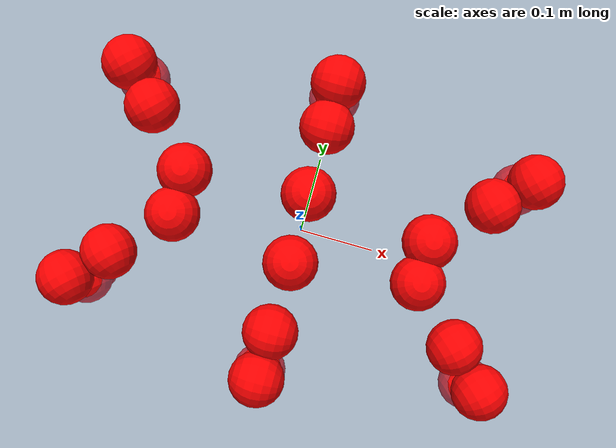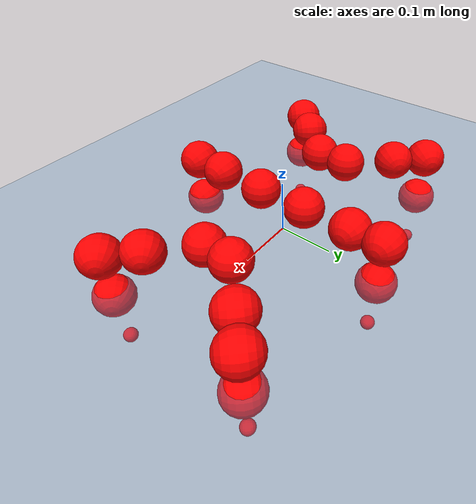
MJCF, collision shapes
<mujoco model="Golem">
  <compiler angle="radian" assetdir="assets" balanceinertia="true" inertiafromgeom="false"/>

  <option timestep="0.005" density="1.2" viscosity="2e-05"/>

  <size nkey="1"/>

  <visual>
    <quality shadowsize="8192"/>
    <map shadowclip="0.5"/>
  </visual>

  <default>
    <default class="/">
      <joint armature="0.01" damping="0.01" frictionloss="0.01"/>
      <geom contype="0" conaffinity="0" group="1" solref="-1000 -80"/>
      <site size="0.01 0.005 0.005" group="5"/>
      <general forcelimited="true" biastype="affine" gainprm="25" biasprm="0 -25 -0.5"/>
      <default class="visual">
        <geom type="mesh" group="2"/>
      </default>
      <default class="collision">
        <geom group="3"/>
      </default>
      <default class="foot">
        <geom size="0.01 0 0" condim="6" group="4" priority="1" solimp="0.015 1 0.01"/>
      </default>
      <default class="reward_collision_sphere">
        <geom group="5" rgba="1 0 0 1"/>
      </default>
    </default>
  </default>

  <asset>
    <texture type="skybox" colorspace="auto" name="//unnamed_texture_0" builtin="gradient" rgb1="0.95 0.95 0.95" rgb2="0.95 0.95 0.95" width="100" height="600"/>
    <texture type="2d" colorspace="auto" name="texplane" builtin="checker" rgb1="0.345 0.575 0.748" rgb2="0.345 0.575 0.748" markrgb="1 1 1" width="512" height="512"/>
    <material name="MatPlane" class="/" texture="texplane" texuniform="true" texrepeat="2 2" specular="0.9"/>
    <mesh name="body" class="/" file="body.stl" scale="0.001 0.001 0.001"/>
    <mesh name="coxa" class="/" file="coxa.stl" scale="0.001 0.001 0.001"/>
    <mesh name="femur" class="/" file="femur.stl" scale="0.001 0.001 0.001"/>
    <mesh name="tibia" class="/" file="tibia.stl" scale="0.001 0.001 0.001"/>
    <mesh name="tarsus" class="/" file="tarsus.stl" scale="0.001 0.001 0.001"/>
  </asset>

  <worldbody>
    <geom name="floor" class="/" size="100 100 0.125" type="plane" group="0" material="MatPlane"/>
    <light name="toplight_shadow" class="/" pos="0 0 5" dir="0.0990148 0.0990148 -0.990148" type="directional" ambient="0.04 0.04 0.04" diffuse="0.55 0.55 0.55" specular="0.12 0.12 0.12"/>
    <light name="toplight_fill" class="/" pos="0 0 5" dir="0.0990148 0.0990148 -0.990148" type="directional" castshadow="false" ambient="0.04 0.04 0.04" diffuse="0.3 0.3 0.3" specular="0.08 0.08 0.08"/>
    <body name="trunk" pos="4.31195e-05 -0.000412428 0.000883804" quat="1 -0.000169561 0.000131354 0.000120974">
      <inertial pos="-0.000122165 1.15131e-05 -0.00352879" quat="1 2.01015e-06 0.00018404 -2.63822e-05" mass="2.66245" diaginertia="0.0121105 0.000672519 0.0134984"/>
      <joint name="//unnamed_joint_0" type="free"/>
      <geom name="//unnamed_geom_1" class="/" pos="0 0 0.0679556" quat="1 0 0 0" type="mesh" rgba="0.9 0.9 0.9 1" mesh="body"/>
      <site name="imu" class="/" pos="0.133198 -0.00187472 0.109638" size="0.00893643"/>
      <camera name="track" class="/" pos="0 -1.16144 0" quat="0.707107 0.707107 0 0" mode="trackcom"/>
      <camera name="ego_camera" class="/" pos="0.134992 0 0.106181" quat="-0.5 -0.5 0.5 0.5"/>
      <body name="coxa_RR" pos="-0.183352 -0.0496281 0.0695098" quat="0.38297 0.000182027 0.000201022 -0.923761">
        <inertial pos="-0.000632446 2.752e-05 0.00183221" quat="0.999997 -0.00147924 -0.000578372 -0.0021039" mass="0.141781" diaginertia="0.0119877 0.000657814 0.0136087"/>
        <joint name="coxa_joint_RR" class="/" pos="0 0 0" axis="-0.000648367 -0.00132377 -0.999999" range="-3.1477 3.13608" armature="0.00911497" damping="0.00784886" frictionloss="0.0088352"/>
        <geom name="//unnamed_geom_2" class="/" type="mesh" rgba="0.2 0.2 0.2 1" mesh="coxa"/>
        <geom name="//unnamed_geom_3" class="reward_collision_sphere" size="0.0357457" pos="-0.0311521 0 0"/>
        <body name="femur_RR" pos="0.0626119 0.00209396 -0.00136127" quat="0.500059 -0.500239 0.499798 0.499903">
          <inertial pos="0.000185207 0.0003568 -0.000826014" quat="0.99999 -0.00146271 -0.00393003 -0.00156181" mass="0.142461" diaginertia="0.0119576 0.000666877 0.0135138"/>
          <joint name="femur_joint_RR" class="/" pos="0 0 0" axis="0.000260363 0.00076309 -1" range="-3.13803 3.13773" armature="0.00875755" damping="0.000686349" frictionloss="0.00895942"/>
          <geom name="//unnamed_geom_4" class="/" type="mesh" rgba="0.9 0.9 0.9 1" mesh="femur"/>
          <geom name="//unnamed_geom_5" class="reward_collision_sphere" size="0.0357457"/>
          <body name="tibia_RR" pos="0.000926731 -0.06362 0.0017721" quat="-8.26273e-06 1 5.23487e-06 -8.6685e-06">
            <inertial pos="-0.000205106 0.000458088 0.0003406" quat="1 5.02472e-05 -3.73089e-05 4.76165e-05" mass="0.144315" diaginertia="0.0122314 0.000665527 0.0136622"/>
            <joint name="tibia_joint_RR" class="/" pos="0 0 0" axis="-0.00063287 0.00132689 0.999999" range="-3.13421 3.14736" armature="0.00935847" damping="0" frictionloss="0.00934797"/>
            <geom name="//unnamed_geom_6" class="/" type="mesh" rgba="0.2 0.2 0.2 1" mesh="tibia"/>
            <geom name="//unnamed_geom_7" class="reward_collision_sphere" size="0.0357457"/>
            <body name="tarsus_RR" pos="0.0907408 -0.000825618 -0.00143614" quat="1 -0.000211985 -0.000257946 -0.00012171">
              <inertial pos="0.061088 0.000182799 -0.000913921" quat="0.499517 0.503076 0.499319 0.498074" mass="0.142838" diaginertia="0.0121522 0.000658905 0.0136633"/>
              <joint name="tarsus_joint_RR" class="/" pos="0 0 0" axis="-0.000580972 -0.002836 0.999996" range="-3.1217 3.14174" armature="0.00886176" damping="0.00394153" frictionloss="0.00901421"/>
              <geom name="//unnamed_geom_8" class="/" type="mesh" rgba="0.9 0.9 0.9 1" mesh="tarsus"/>
              <geom name="foot_1" class="foot" size="0.00892154" pos="0.116301 0 0" quat="0 -0.707107 0 0.707107"/>
              <geom name="//unnamed_geom_10" class="reward_collision_sphere" size="0.0357457"/>
              <geom name="//unnamed_geom_11" class="reward_collision_sphere" size="0.0134047" pos="0.111628 0 0"/>
              <site name="foot_1" class="foot" pos="0.116301 0 0" quat="0 -0.707107 0 0.707107" size="0.00893643"/>
            </body>
          </body>
        </body>
      </body>
      <body name="coxa_RM" pos="-6.2863e-05 -0.0778672 0.0687166" quat="0.707134 0.000306155 -0.000167784 -0.707079">
        <inertial pos="0.00019471 0.00019215 0.000631295" quat="0.999994 0.000665819 0.000221318 -0.00329426" mass="0.145393" diaginertia="0.0121361 0.000669028 0.0135104"/>
        <joint name="coxa_joint_RM" class="/" pos="0 0 0" axis="-0.00227905 -0.00102198 -0.999997" range="-3.13705 3.15486" armature="0.00879317" damping="0.00986115" frictionloss="0.00854649"/>
        <geom name="//unnamed_geom_12" class="/" type="mesh" rgba="0.2 0.2 0.2 1" mesh="coxa"/>
        <geom name="//unnamed_geom_13" class="reward_collision_sphere" size="0.0357457" pos="-0.0311521 0 0"/>
        <body name="femur_RM" pos="0.059478 -0.000694012 0.00115802" quat="0.500097 -0.499969 0.499959 0.499974">
          <inertial pos="0.000167823 -0.00104943 0.000229076" quat="0.999998 -0.000330195 -0.00178283 0.000863421" mass="0.140975" diaginertia="0.0120939 0.000659698 0.013597"/>
          <joint name="femur_joint_RM" class="/" pos="0 0 0" axis="0.00100136 0.00031234 -0.999999" range="-3.14892 3.12376" armature="0.00855864" damping="0.00511943" frictionloss="0.00890493"/>
          <geom name="//unnamed_geom_14" class="/" type="mesh" rgba="0.9 0.9 0.9 1" mesh="femur"/>
          <geom name="//unnamed_geom_15" class="reward_collision_sphere" size="0.0357457"/>
          <body name="tibia_RM" pos="-0.000505819 -0.0612926 -0.000635375" quat="0.000141027 1 6.02084e-05 -2.87732e-06">
            <inertial pos="-0.000242688 -0.000902368 -0.000554332" quat="0.999997 -0.000653648 -0.00226443 0.000715314" mass="0.143119" diaginertia="0.0120946 0.000660363 0.0136308"/>
            <joint name="tibia_joint_RM" class="/" pos="0 0 0" axis="-0.000420781 0.000476697 1" range="-3.14794 3.12185" armature="0.00879349" damping="0.00411998" frictionloss="0.00902301"/>
            <geom name="//unnamed_geom_16" class="/" type="mesh" rgba="0.2 0.2 0.2 1" mesh="tibia"/>
            <geom name="//unnamed_geom_17" class="reward_collision_sphere" size="0.0357457"/>
            <body name="tarsus_RM" pos="0.0889127 -0.000567123 0.00124242" quat="1 5.95354e-05 0.000368548 0.00018003">
              <inertial pos="0.0626208 0.000593087 0.000451809" quat="0.49985 0.500522 0.49979 0.499837" mass="0.141846" diaginertia="0.0121432 0.000662052 0.0135413"/>
              <joint name="tarsus_joint_RM" class="/" pos="0 0 0" axis="-0.000409096 0.000525168 1" range="-3.14358 3.1284" armature="0.00921673" damping="0.00259026" frictionloss="0.00914347"/>
              <geom name="//unnamed_geom_18" class="/" type="mesh" rgba="0.9 0.9 0.9 1" mesh="tarsus"/>
              <geom name="foot_2" class="foot" size="0.00933176" pos="0.116301 0 0" quat="0 -0.707107 0 0.707107"/>
              <geom name="//unnamed_geom_20" class="reward_collision_sphere" size="0.0357457"/>
              <geom name="//unnamed_geom_21" class="reward_collision_sphere" size="0.0134047" pos="0.111628 0 0"/>
              <site name="foot_2" class="foot" pos="0.116301 0 0" quat="0 -0.707107 0 0.707107" size="0.00893643"/>
            </body>
          </body>
        </body>
      </body>
      <body name="coxa_RF" pos="0.184297 -0.0493028 0.0676151" quat="0.923831 7.86075e-05 -2.78405e-05 -0.382799">
        <inertial pos="-0.000134916 -0.0005648 0.00073536" quat="0.99999 0.000497128 -0.0042596 0.00133203" mass="0.143522" diaginertia="0.0122336 0.000670275 0.0136134"/>
        <joint name="coxa_joint_RF" class="/" pos="0 0 0" axis="-0.000614166 -0.00125921 -0.999999" range="-3.14295 3.15615" armature="0.00875068" damping="0.00812508" frictionloss="0.00893321"/>
        <geom name="//unnamed_geom_22" class="/" type="mesh" rgba="0.2 0.2 0.2 1" mesh="coxa"/>
        <geom name="//unnamed_geom_23" class="reward_collision_sphere" size="0.0357457" pos="-0.0311521 0 0"/>
        <body name="femur_RF" pos="0.061735 0.000382899 -0.00122591" quat="0.499914 -0.500154 0.499915 0.500018">
          <inertial pos="0.000360501 -6.47878e-05 -0.00031539" quat="0.999991 -0.00113316 0.00294947 0.00284315" mass="0.143059" diaginertia="0.0122292 0.000666972 0.0136527"/>
          <joint name="femur_joint_RF" class="/" pos="0 0 0" axis="-0.00106364 -0.000697344 -0.999999" range="-3.15161 3.13509" armature="0.00888598" damping="0.00449057" frictionloss="0.00898406"/>
          <geom name="//unnamed_geom_24" class="/" type="mesh" rgba="0.9 0.9 0.9 1" mesh="femur"/>
          <geom name="//unnamed_geom_25" class="reward_collision_sphere" size="0.0357457"/>
          <body name="tibia_RF" pos="0.000648907 -0.0640984 -0.000525123" quat="-3.51278e-05 1 8.46072e-05 0.000275916">
            <inertial pos="0.000269061 0.000141929 0.000417786" quat="1 0.000319653 -0.000103218 3.717e-05" mass="0.140213" diaginertia="0.0119663 0.000649216 0.0134397"/>
            <joint name="tibia_joint_RF" class="/" pos="0 0 0" axis="-0.000582597 0.00101551 0.999999" range="-3.12414 3.13338" armature="0.00880834" damping="0" frictionloss="0.00933838"/>
            <geom name="//unnamed_geom_26" class="/" type="mesh" rgba="0.2 0.2 0.2 1" mesh="tibia"/>
            <geom name="//unnamed_geom_27" class="reward_collision_sphere" size="0.0357457"/>
            <body name="tarsus_RF" pos="0.0905888 0.000624604 7.1247e-05" quat="1 1.44838e-05 -3.21584e-06 7.73564e-06">
              <inertial pos="0.0621251 0.000610281 2.38502e-05" quat="0.499538 0.49968 0.500304 0.500477" mass="0.143385" diaginertia="0.0122746 0.000669221 0.0136692"/>
              <joint name="tarsus_joint_RF" class="/" pos="0 0 0" axis="0.000791404 -0.0065062 0.999979" range="-3.14496 3.12759" armature="0.00878165" damping="0" frictionloss="0.00854469"/>
              <geom name="//unnamed_geom_28" class="/" type="mesh" rgba="0.9 0.9 0.9 1" mesh="tarsus"/>
              <geom name="foot_3" class="foot" size="0.00881465" pos="0.116301 0 0" quat="0 -0.707107 0 0.707107"/>
              <geom name="//unnamed_geom_30" class="reward_collision_sphere" size="0.0357457"/>
              <geom name="//unnamed_geom_31" class="reward_collision_sphere" size="0.0134047" pos="0.111628 0 0"/>
              <site name="foot_3" class="foot" pos="0.116301 0 0" quat="0 -0.707107 0 0.707107" size="0.00893643"/>
            </body>
          </body>
        </body>
      </body>
      <body name="coxa_LR" pos="-0.184124 0.052077 0.0683095" quat="0.382695 6.07534e-06 4.74679e-05 0.923875">
        <inertial pos="0.00103409 -0.00069352 0.000857502" quat="0.999997 -0.00208545 6.0908e-05 -0.00133718" mass="0.144144" diaginertia="0.012132 0.000671504 0.0135657"/>
        <joint name="coxa_joint_LR" class="/" pos="0 0 0" axis="-2.05621e-05 0.000149651 -1" range="-3.1263 3.13919" armature="0.0089471" damping="0.00590443" frictionloss="0.00859257"/>
        <geom name="//unnamed_geom_32" class="/" type="mesh" rgba="0.2 0.2 0.2 1" mesh="coxa"/>
        <geom name="//unnamed_geom_33" class="reward_collision_sphere" size="0.0357457" pos="-0.0311521 0 0"/>
        <body name="femur_LR" pos="0.0632171 -0.00348401 -0.001522" quat="0.49997 -0.500078 0.499965 0.499987">
          <inertial pos="-0.000150439 -0.00101064 -0.000275624" quat="0.999998 0.000241392 -0.000722063 0.00159601" mass="0.143099" diaginertia="0.0119062 0.000655863 0.0135702"/>
          <joint name="femur_joint_LR" class="/" pos="0 0 0" axis="-0.00489158 0.00434722 0.999979" range="-3.12511 3.1327" armature="0.00931096" damping="0.00525944" frictionloss="0.00896643"/>
          <geom name="//unnamed_geom_34" class="/" type="mesh" rgba="0.9 0.9 0.9 1" mesh="femur"/>
          <geom name="//unnamed_geom_35" class="reward_collision_sphere" size="0.0357457"/>
          <body name="tibia_LR" pos="0.000440489 -0.063832 -0.00151052" quat="3.53689e-07 1 -2.14394e-07 8.36527e-06">
            <inertial pos="0.000634933 0.000298725 -0.000413956" quat="0.999992 -0.00280226 -0.000601652 0.00293827" mass="0.143486" diaginertia="0.012219 0.000658976 0.0136517"/>
            <joint name="tibia_joint_LR" class="/" pos="0 0 0" axis="0.00119976 -0.00292029 -0.999995" range="-3.13214 3.12414" armature="0.009186" damping="0.00525075" frictionloss="0.00892262"/>
            <geom name="//unnamed_geom_36" class="/" type="mesh" rgba="0.2 0.2 0.2 1" mesh="tibia"/>
            <geom name="//unnamed_geom_37" class="reward_collision_sphere" size="0.0357457"/>
            <body name="tarsus_LR" pos="0.0915662 0.000647287 0.00148915" quat="1 2.39148e-06 3.94735e-06 -4.1373e-05">
              <inertial pos="0.0629385 0.000700603 0.000631641" quat="0.50025 0.499914 0.499738 0.500098" mass="0.142619" diaginertia="0.0120715 0.000668113 0.0133611"/>
              <joint name="tarsus_joint_LR" class="/" pos="0 0 0" axis="0.000193492 8.5291e-05 -1" range="-3.14687 3.11998" armature="0.00891665" damping="0" frictionloss="0.00933743"/>
              <geom name="//unnamed_geom_38" class="/" type="mesh" rgba="0.9 0.9 0.9 1" mesh="tarsus"/>
              <geom name="foot_4" class="foot" size="0.00852292" pos="0.116301 0 0" quat="0.707107 0 -0.707107 0"/>
              <geom name="//unnamed_geom_40" class="reward_collision_sphere" size="0.0357457"/>
              <geom name="//unnamed_geom_41" class="reward_collision_sphere" size="0.0134047" pos="0.111628 0 0"/>
              <site name="foot_4" class="foot" pos="0.116301 0 0" quat="0.707107 0 -0.707107 0" size="0.00893643"/>
            </body>
          </body>
        </body>
      </body>
      <body name="coxa_LM" pos="-0.00179755 0.0751352 0.0682947" quat="0.70711 2.93383e-05 -1.53317e-07 0.707103">
        <inertial pos="0.000129754 9.14357e-05 0.000553677" quat="0.999997 -0.00219686 0.000861613 0.000238148" mass="0.143931" diaginertia="0.0120163 0.000661096 0.0135682"/>
        <joint name="coxa_joint_LM" class="/" pos="0 0 0" axis="0.00525043 0.00213771 -0.999984" range="-3.14784 3.14255" armature="0.008924" damping="0.00703847" frictionloss="0.00890732"/>
        <geom name="//unnamed_geom_42" class="/" type="mesh" rgba="0.2 0.2 0.2 1" mesh="coxa"/>
        <geom name="//unnamed_geom_43" class="reward_collision_sphere" size="0.0357457" pos="-0.0311521 0 0"/>
        <body name="femur_LM" pos="0.0583759 0.000623522 -0.00119783" quat="0.499881 -0.499947 0.49995 0.500223">
          <inertial pos="0.000629469 4.38565e-05 -0.000806791" quat="0.999994 0.00185984 0.00271182 0.00112491" mass="0.144707" diaginertia="0.0121655 0.000667376 0.0135804"/>
          <joint name="femur_joint_LM" class="/" pos="0 0 0" axis="-0.00230536 0.00675504 0.999975" range="-3.13141 3.12654" armature="0.00931313" damping="0.00416023" frictionloss="0.00909978"/>
          <geom name="//unnamed_geom_44" class="/" type="mesh" rgba="0.9 0.9 0.9 1" mesh="femur"/>
          <geom name="//unnamed_geom_45" class="reward_collision_sphere" size="0.0357457"/>
          <body name="tibia_LM" pos="-0.000324628 -0.0593539 0.00153772" quat="-9.00595e-05 1 -0.000404919 -5.63077e-05">
            <inertial pos="-0.000743807 -0.00144202 -0.000117008" quat="0.999998 0.000279582 -0.000486565 0.00208943" mass="0.139536" diaginertia="0.0119429 0.000653098 0.0133591"/>
            <joint name="tibia_joint_LM" class="/" pos="0 0 0" axis="-0.00077358 0.000444464 -1" range="-3.14884 3.15565" armature="0.00942626" damping="0" frictionloss="0.00871554"/>
            <geom name="//unnamed_geom_46" class="/" type="mesh" rgba="0.2 0.2 0.2 1" mesh="tibia"/>
            <geom name="//unnamed_geom_47" class="reward_collision_sphere" size="0.0357457"/>
            <body name="tarsus_LM" pos="0.0913355 -0.000519916 -0.00112945" quat="1 -2.85311e-05 4.10568e-05 8.53523e-06">
              <inertial pos="0.0638149 -2.2962e-05 1.67897e-06" quat="0.500765 0.501737 0.500894 0.496588" mass="0.14096" diaginertia="0.0118854 0.000644586 0.0133708"/>
              <joint name="tarsus_joint_LM" class="/" pos="0 0 0" axis="-0.00073566 -0.00116338 -0.999999" range="-3.1377 3.13662" armature="0.00875264" damping="0.00340997" frictionloss="0.00920654"/>
              <geom name="//unnamed_geom_48" class="/" type="mesh" rgba="0.9 0.9 0.9 1" mesh="tarsus"/>
              <geom name="foot_5" class="foot" size="0.00871744" pos="0.116301 0 0" quat="0.707107 0 -0.707107 0"/>
              <geom name="//unnamed_geom_50" class="reward_collision_sphere" size="0.0357457"/>
              <geom name="//unnamed_geom_51" class="reward_collision_sphere" size="0.0134047" pos="0.111628 0 0"/>
              <site name="foot_5" class="foot" pos="0.116301 0 0" quat="0.707107 0 -0.707107 0" size="0.00893643"/>
            </body>
          </body>
        </body>
      </body>
      <body name="coxa_LF" pos="0.185028 0.0489025 0.0682929" quat="0.923867 -0.0001717 -0.000300888 0.382713">
        <inertial pos="-2.44302e-05 -0.000724163 0.000809292" quat="1 0.000644181 -8.91317e-05 0.000632752" mass="0.143522" diaginertia="0.0121497 0.000658488 0.0134818"/>
        <joint name="coxa_joint_LF" class="/" pos="0 0 0" axis="-0.00129242 0.00184251 -0.999997" range="-3.12115 3.14079" armature="0.00874322" damping="0.00135344" frictionloss="0.00923574"/>
        <geom name="//unnamed_geom_52" class="/" type="mesh" rgba="0.2 0.2 0.2 1" mesh="coxa"/>
        <geom name="//unnamed_geom_53" class="reward_collision_sphere" size="0.0357457" pos="-0.0311521 0 0"/>
        <body name="femur_LF" pos="0.0621581 0.000504954 -0.00061957" quat="0.49985 -0.499872 0.500099 0.500179">
          <inertial pos="-5.2338e-05 0.000851362 0.000207594" quat="1 -0.00010727 -0.000330421 0.000254168" mass="0.143206" diaginertia="0.012035 0.000662421 0.0135331"/>
          <joint name="femur_joint_LF" class="/" pos="0 0 0" axis="-0.000605369 -0.0016157 0.999999" range="-3.12517 3.12732" armature="0.0091427" damping="0" frictionloss="0.008904"/>
          <geom name="//unnamed_geom_54" class="/" type="mesh" rgba="0.9 0.9 0.9 1" mesh="femur"/>
          <geom name="//unnamed_geom_55" class="reward_collision_sphere" size="0.0357457"/>
          <body name="tibia_LF" pos="0.00056477 -0.0634843 -0.000455327" quat="0.000199569 1 0.000386746 -0.00033069">
            <inertial pos="-0.000913286 0.000149719 0.000772788" quat="0.999999 0.000133129 0.000488562 0.00126733" mass="0.140398" diaginertia="0.0121363 0.000658467 0.0135773"/>
            <joint name="tibia_joint_LF" class="/" pos="0 0 0" axis="-0.00203276 -0.0055897 -0.999982" range="-3.14492 3.15022" armature="0.00912779" damping="0" frictionloss="0.00906339"/>
            <geom name="//unnamed_geom_56" class="/" type="mesh" rgba="0.2 0.2 0.2 1" mesh="tibia"/>
            <geom name="//unnamed_geom_57" class="reward_collision_sphere" size="0.0357457"/>
            <body name="tarsus_LF" pos="0.0932362 0.00138022 0.000242495" quat="1 8.3404e-06 8.63247e-05 -1.08155e-05">
              <inertial pos="0.0631385 0.000584636 -0.00020463" quat="0.500521 0.497266 0.503727 0.498461" mass="0.143664" diaginertia="0.0120437 0.000661449 0.0135096"/>
              <joint name="tarsus_joint_LF" class="/" pos="0 0 0" axis="0.00318451 -0.00273861 -0.999991" stiffness="0.0279018" range="-3.15054 3.15232" armature="0.00896428" damping="0.0255496" frictionloss="0.00923259"/>
              <geom name="//unnamed_geom_58" class="/" type="mesh" rgba="0.9 0.9 0.9 1" mesh="tarsus"/>
              <geom name="foot_6" class="foot" size="0.00914825" pos="0.116301 0 0" quat="0.707107 0 -0.707107 0"/>
              <geom name="//unnamed_geom_60" class="reward_collision_sphere" size="0.0357457"/>
              <geom name="//unnamed_geom_61" class="reward_collision_sphere" size="0.0134047" pos="0.111628 0 0"/>
              <site name="foot_6" class="foot" pos="0.116301 0 0" quat="0.707107 0 -0.707107 0" size="0.00893643"/>
            </body>
          </body>
        </body>
      </body>
    </body>
  </worldbody>

  <contact>
    <pair class="/" geom1="floor" geom2="foot_1" name="//unnamed_contact_0"/>
    <pair class="/" geom1="floor" geom2="foot_2" name="//unnamed_contact_1"/>
    <pair class="/" geom1="floor" geom2="foot_3" name="//unnamed_contact_2"/>
    <pair class="/" geom1="floor" geom2="foot_4" name="//unnamed_contact_3"/>
    <pair class="/" geom1="floor" geom2="foot_5" name="//unnamed_contact_4"/>
    <pair class="/" geom1="floor" geom2="foot_6" name="//unnamed_contact_5"/>
  </contact>

  <actuator>
    <general name="coxa_joint_RR" class="/" joint="coxa_joint_RR" forcerange="-6.5055 6.5055" gainprm="21.7102" biasprm="0 -21.7102 -0.468914"/>
    <general name="femur_joint_RR" class="/" joint="femur_joint_RR" forcerange="-6.60054 6.60054" gainprm="21.7102" biasprm="0 -21.7102 -0.468914"/>
    <general name="tibia_joint_RR" class="/" joint="tibia_joint_RR" forcerange="-6.54566 6.54566" gainprm="21.7102" biasprm="0 -21.7102 -0.468914"/>
    <general name="tarsus_joint_RR" class="/" joint="tarsus_joint_RR" forcerange="-6.40417 6.40417" gainprm="21.7102" biasprm="0 -21.7102 -0.468914"/>
    <general name="coxa_joint_RM" class="/" joint="coxa_joint_RM" forcerange="-6.60777 6.60777" gainprm="21.7102" biasprm="0 -21.7102 -0.468914"/>
    <general name="femur_joint_RM" class="/" joint="femur_joint_RM" forcerange="-6.41289 6.41289" gainprm="21.7102" biasprm="0 -21.7102 -0.468914"/>
    <general name="tibia_joint_RM" class="/" joint="tibia_joint_RM" forcerange="-6.57193 6.57193" gainprm="21.7102" biasprm="0 -21.7102 -0.468914"/>
    <general name="tarsus_joint_RM" class="/" joint="tarsus_joint_RM" forcerange="-6.40229 6.40229" gainprm="21.7102" biasprm="0 -21.7102 -0.468914"/>
    <general name="coxa_joint_RF" class="/" joint="coxa_joint_RF" forcerange="-6.64805 6.64805" gainprm="21.7102" biasprm="0 -21.7102 -0.468914"/>
    <general name="femur_joint_RF" class="/" joint="femur_joint_RF" forcerange="-6.59054 6.59054" gainprm="21.7102" biasprm="0 -21.7102 -0.468914"/>
    <general name="tibia_joint_RF" class="/" joint="tibia_joint_RF" forcerange="-6.4922 6.4922" gainprm="21.7102" biasprm="0 -21.7102 -0.468914"/>
    <general name="tarsus_joint_RF" class="/" joint="tarsus_joint_RF" forcerange="-6.62243 6.62243" gainprm="21.7102" biasprm="0 -21.7102 -0.468914"/>
    <general name="coxa_joint_LR" class="/" joint="coxa_joint_LR" forcerange="-6.55448 6.55448" gainprm="21.7102" biasprm="0 -21.7102 -0.468914"/>
    <general name="femur_joint_LR" class="/" joint="femur_joint_LR" forcerange="-6.54635 6.54635" gainprm="21.7102" biasprm="0 -21.7102 -0.468914"/>
    <general name="tibia_joint_LR" class="/" joint="tibia_joint_LR" forcerange="-6.54954 6.54954" gainprm="21.7102" biasprm="0 -21.7102 -0.468914"/>
    <general name="tarsus_joint_LR" class="/" joint="tarsus_joint_LR" forcerange="-6.46037 6.46037" gainprm="21.7102" biasprm="0 -21.7102 -0.468914"/>
    <general name="coxa_joint_LM" class="/" joint="coxa_joint_LM" forcerange="-6.40519 6.40519" gainprm="21.7102" biasprm="0 -21.7102 -0.468914"/>
    <general name="femur_joint_LM" class="/" joint="femur_joint_LM" forcerange="-6.40701 6.40701" gainprm="21.7102" biasprm="0 -21.7102 -0.468914"/>
    <general name="tibia_joint_LM" class="/" joint="tibia_joint_LM" forcerange="-6.5407 6.5407" gainprm="21.7102" biasprm="0 -21.7102 -0.468914"/>
    <general name="tarsus_joint_LM" class="/" joint="tarsus_joint_LM" forcerange="-6.42556 6.42556" gainprm="21.7102" biasprm="0 -21.7102 -0.468914"/>
    <general name="coxa_joint_LF" class="/" joint="coxa_joint_LF" forcerange="-6.72493 6.72493" gainprm="21.7102" biasprm="0 -21.7102 -0.468914"/>
    <general name="femur_joint_LF" class="/" joint="femur_joint_LF" forcerange="-6.55182 6.55182" gainprm="21.7102" biasprm="0 -21.7102 -0.468914"/>
    <general name="tibia_joint_LF" class="/" joint="tibia_joint_LF" forcerange="-6.52249 6.52249" gainprm="21.7102" biasprm="0 -21.7102 -0.468914"/>
    <general name="tarsus_joint_LF" class="/" joint="tarsus_joint_LF" forcerange="-6.49583 6.49583" gainprm="21.7102" biasprm="0 -21.7102 -0.468914"/>
  </actuator>

  <sensor>
    <gyro site="imu" name="imu_angular_velocity"/>
    <velocimeter site="imu" name="imu_linear_velocity"/>
    <framelinvel objtype="site" objname="foot_1" name="foot_1_global_linear_velocity"/>
    <framelinvel objtype="site" objname="foot_2" name="foot_2_global_linear_velocity"/>
    <framelinvel objtype="site" objname="foot_3" name="foot_3_global_linear_velocity"/>
    <framelinvel objtype="site" objname="foot_4" name="foot_4_global_linear_velocity"/>
    <framelinvel objtype="site" objname="foot_5" name="foot_5_global_linear_velocity"/>
    <framelinvel objtype="site" objname="foot_6" name="foot_6_global_linear_velocity"/>
  </sensor>

  <keyframe>
    <key name="home" qpos="0 0 0.1457 1 0 0 0 0 0 0 0 0 0 0 0 0 0 0 0 0 0 0 0 0 0 0 0 0 0 0 0"/>
  </keyframe>
</mujoco>
